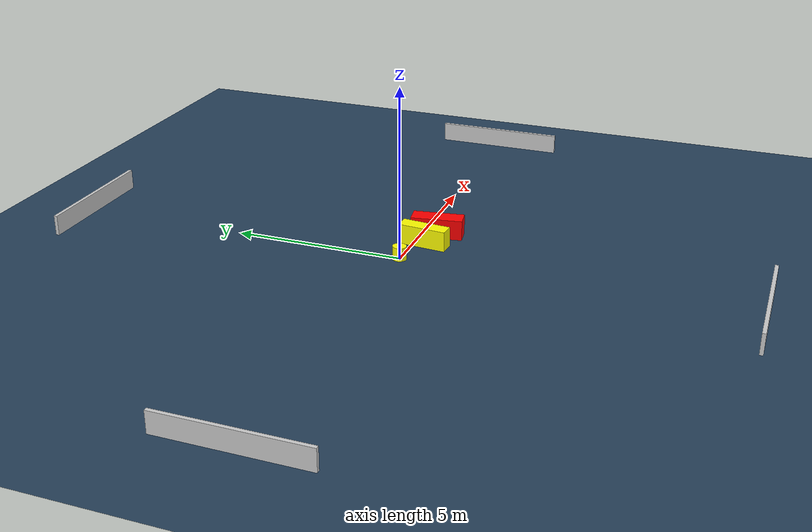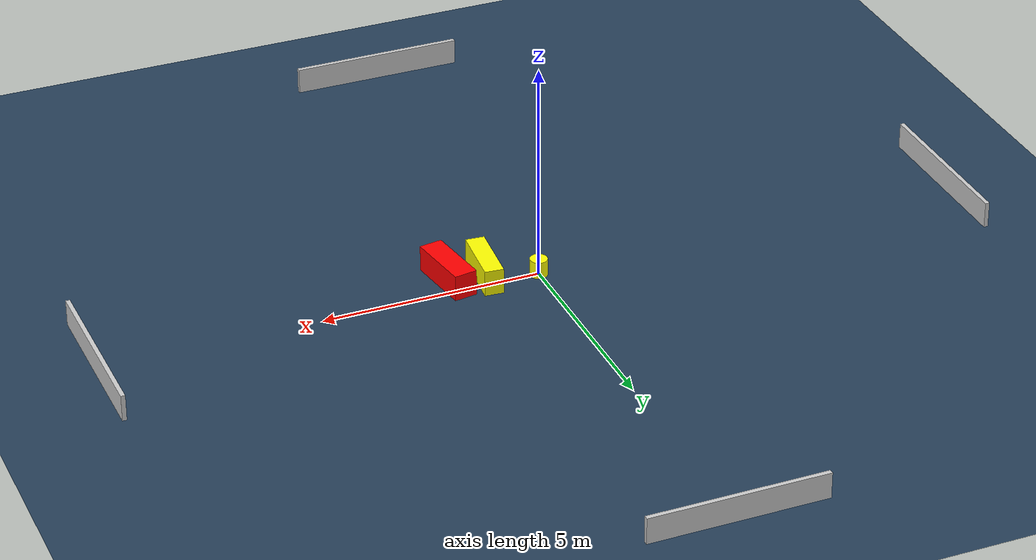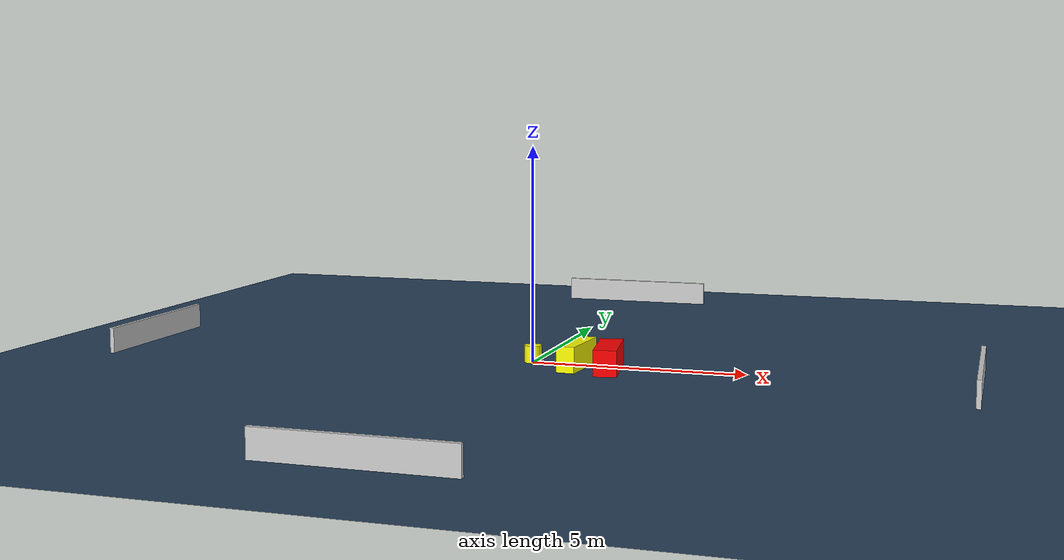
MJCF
<?xml version="1.0" ?>
<mujoco model="generated_environment">
  <option timestep="0.01" integrator="RK4" cone="elliptic"/>
  <default>
    <geom density="1"/>
  </default>
  <asset>
    <texture builtin="gradient" height="3072" name="skybox" rgb1="0.3 0.5 0.7" rgb2="0 0 0" type="skybox" width="512"/>
    <texture builtin="checker" height="300" name="groundplane" rgb1="0.2 0.3 0.4" rgb2="0.1 0.2 0.3" type="2d" width="300"/>
    <material name="groundplane" reflectance="0.2" texrepeat="5 5" texture="groundplane"/>
  </asset>
  <worldbody>
    <light dir="0 0 -1" directional="true" pos="0 0 1.5"/>
    <geom condim="3" friction="0.5 0.005 0.001" material="groundplane" name="floor" pos="0 0 0" size="0 0 0.05" type="plane"/>
    <body name="walls">
      <geom name="wall_1" condim="4" pos="-10.0 0.0 0.3" rgba="0.800000011920929 0.800000011920929 0.800000011920929 1.0" size="0.05 2.0 0.3" type="box"/>
      <geom name="wall_2" condim="4" pos="10.0 0.0 0.3" rgba="0.800000011920929 0.800000011920929 0.800000011920929 1.0" size="0.05 2.0 0.3" type="box"/>
      <geom name="wall_3" condim="4" pos="0.0 -10.0 0.3" rgba="0.800000011920929 0.800000011920929 0.800000011920929 1.0" size="2.0 0.05 0.3" type="box"/>
      <geom name="wall_4" condim="4" pos="0.0 10.0 0.3" rgba="0.800000011920929 0.800000011920929 0.800000011920929 1.0" size="2.0 0.05 0.3" type="box"/>
    </body>
    <body name="robot">
      <joint name="joint_x" type="slide" pos="0 0 0" axis="1 0 0"/>
      <joint name="joint_y" type="slide" pos="0 0 0" axis="0 1 0"/>
      <geom name="robot" type="cylinder" pos="0.0 0.0 0.2" size="0.2 0.2 0.0" mass="5.0" friction="1.0 0.005 0.0001" condim="4" rgba="1.0 1.0 0.0 1.0"/>
    </body>
    <body name="obstacle_1_movable">
      <geom name="obstacle_1_movable" condim="4" pos="1.140977303679972 -0.31901415669047006 0.3" euler="0 0 354.9096945552351" friction="0.0 0.005 0.001" rgba="1.0 1.0 0.0 1.0" size="0.21549141375045022 0.7221479442067269 0.3" type="box" mass="0.1"/>
      <joint type="free"/>
    </body>
    <body name="obstacle_2_static">
      <geom name="obstacle_2_static" condim="4" pos="1.9321281346919914 -0.4653294907886617 0.3" euler="0 0 98.80838464123833" friction="0.0 0.005 0.001" rgba="1.0 0.0 0.0 1.0" size="0.7568036744782181 0.26546901176617155 0.3" type="box"/>
    </body>
  </worldbody>
  <actuator>
    <motor name="actuator_x" joint="joint_x" gear="1" ctrlrange="-1 1"/>
    <motor name="actuator_y" joint="joint_y" gear="1" ctrlrange="-1 1"/>
  </actuator>
</mujoco>
